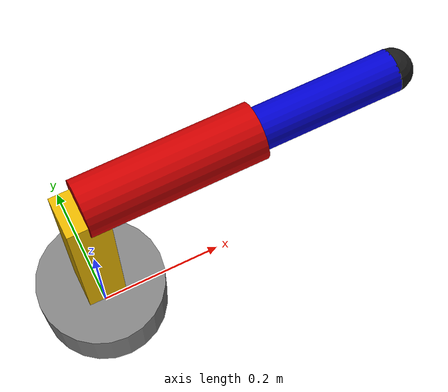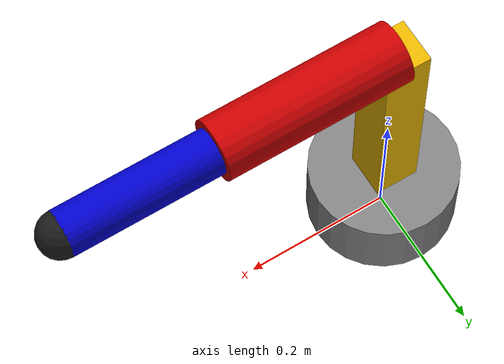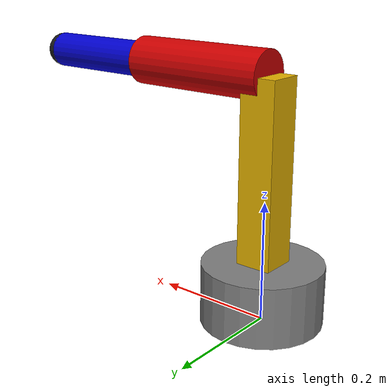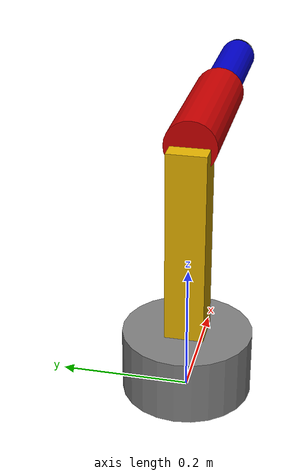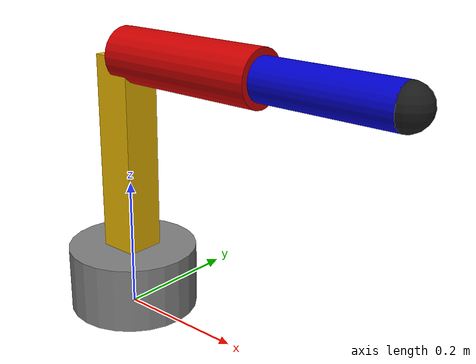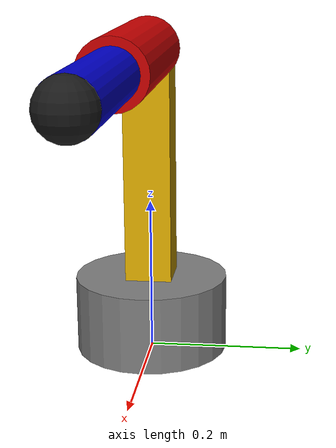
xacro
<?xml version="1.0"?>
<robot name="robot_manipulator" xmlns:xacro="http://www.ros.org/wiki/xacro">

  <!-- Material -->
  <material name="abu_abu">  <color rgba="0.5 0.5 0.5 1.0"/></material>
  <material name="kuning">   <color rgba="0.9 0.7 0.0 1.0"/></material>
  <material name="merah">    <color rgba="0.8 0.0 0.0 1.0"/></material>
  <material name="biru">     <color rgba="0.0 0.0 0.8 1.0"/></material>
  <material name="hitam">    <color rgba="0.1 0.1 0.1 1.0"/></material>

  <!-- BASE -->
  <link name="world"/>

  <joint name="joint_base_world" type="fixed">
    <parent link="world"/>
    <child link="base_link"/>
    <origin xyz="0 0 0" rpy="0 0 0"/>
  </joint>

  <link name="base_link">
    <inertial>
      <mass value="2.0"/>
      <origin xyz="0 0 0.05" rpy="0 0 0"/>
      <inertia ixx="0.01" ixy="0" ixz="0" iyy="0.01" iyz="0" izz="0.01"/>
    </inertial>
    <collision>
      <origin xyz="0 0 0.05" rpy="0 0 0"/>
      <geometry><cylinder radius="0.1" length="0.1"/></geometry>
    </collision>
    <visual>
      <origin xyz="0 0 0.05" rpy="0 0 0"/>
      <geometry><cylinder radius="0.1" length="0.1"/></geometry>
      <material name="abu_abu"/>
    </visual>
  </link>

  <!-- JOINT 1: Rotasi horizontal (yaw) -->
  <joint name="joint_1" type="revolute">
    <parent link="base_link"/>
    <child link="link_1"/>
    <origin xyz="0 0 0.1" rpy="0 0 0"/>
    <axis xyz="0 0 1"/>
    <limit lower="-3.14159" upper="3.14159" effort="100" velocity="1.0"/>
    <dynamics damping="0.5" friction="0.1"/>
  </joint>

  <link name="link_1">
    <inertial>
      <mass value="0.5"/>
      <origin xyz="0 0 0.15" rpy="0 0 0"/>
      <inertia ixx="0.003" ixy="0" ixz="0" iyy="0.003" iyz="0" izz="0.001"/>
    </inertial>
    <collision>
      <origin xyz="0 0 0.15" rpy="0 0 0"/>
      <geometry><box size="0.06 0.06 0.30"/></geometry>
    </collision>
    <visual>
      <origin xyz="0 0 0.15" rpy="0 0 0"/>
      <geometry><box size="0.06 0.06 0.30"/></geometry>
      <material name="kuning"/>
    </visual>
  </link>

  <!-- JOINT 2: Rotasi pitch bahu -->
  <joint name="joint_2" type="revolute">
    <parent link="link_1"/>
    <child link="link_2"/>
    <origin xyz="0 0 0.30" rpy="0 0 0"/>
    <axis xyz="0 1 0"/>
    <limit lower="-1.5707" upper="1.5707" effort="80" velocity="1.0"/>
    <dynamics damping="0.5" friction="0.1"/>
  </joint>

  <link name="link_2">
    <inertial>
      <mass value="0.3"/>
      <origin xyz="0.125 0 0" rpy="0 0 0"/>
      <inertia ixx="0.001" ixy="0" ixz="0" iyy="0.001" iyz="0" izz="0.001"/>
    </inertial>
    <collision>
      <origin xyz="0.125 0 0" rpy="0 1.5707 0"/>
      <geometry><cylinder radius="0.04" length="0.25"/></geometry>
    </collision>
    <visual>
      <origin xyz="0.125 0 0" rpy="0 1.5707 0"/>
      <geometry><cylinder radius="0.04" length="0.25"/></geometry>
      <material name="merah"/>
    </visual>
  </link>

  <!-- JOINT 3: Rotasi pitch siku -->
  <joint name="joint_3" type="revolute">
    <parent link="link_2"/>
    <child link="link_3"/>
    <origin xyz="0.25 0 0" rpy="0 0 0"/>
    <axis xyz="0 1 0"/>
    <limit lower="-2.0944" upper="0" effort="50" velocity="1.5"/>
    <dynamics damping="0.3" friction="0.05"/>
  </joint>

  <link name="link_3">
    <inertial>
      <mass value="0.2"/>
      <origin xyz="0.1 0 0" rpy="0 0 0"/>
      <inertia ixx="0.0005" ixy="0" ixz="0" iyy="0.0005" iyz="0" izz="0.0005"/>
    </inertial>
    <collision>
      <origin xyz="0.1 0 0" rpy="0 1.5707 0"/>
      <geometry><cylinder radius="0.03" length="0.20"/></geometry>
    </collision>
    <visual>
      <origin xyz="0.1 0 0" rpy="0 1.5707 0"/>
      <geometry><cylinder radius="0.03" length="0.20"/></geometry>
      <material name="biru"/>
    </visual>
  </link>

  <!-- End Effector -->
  <joint name="joint_end_effector" type="fixed">
    <parent link="link_3"/>
    <child link="end_effector"/>
    <origin xyz="0.20 0 0" rpy="0 0 0"/>
  </joint>

  <link name="end_effector">
    <inertial>
      <mass value="0.05"/>
      <origin xyz="0 0 0" rpy="0 0 0"/>
      <inertia ixx="0.0001" ixy="0" ixz="0" iyy="0.0001" iyz="0" izz="0.0001"/>
    </inertial>
    <collision>
      <geometry><sphere radius="0.03"/></geometry>
    </collision>
    <visual>
      <geometry><sphere radius="0.03"/></geometry>
      <material name="hitam"/>
    </visual>
  </link>

  <!-- ros2_control interface: hardware + joints -->
  <!-- Menggunakan mock_components agar tidak perlu paket gazebo_ros2_control -->
  <!-- Gerakan joint tampil di RViz2; Gazebo menampilkan model statis -->
  <ros2_control name="ManipulatorSystem" type="system">
    <hardware>
      <plugin>mock_components/GenericSystem</plugin>
    </hardware>
    <joint name="joint_1">
      <command_interface name="position">
        <param name="min">-3.14159</param>
        <param name="max"> 3.14159</param>
      </command_interface>
      <state_interface name="position"/>
      <state_interface name="velocity"/>
    </joint>
    <joint name="joint_2">
      <command_interface name="position">
        <param name="min">-1.5707</param>
        <param name="max"> 1.5707</param>
      </command_interface>
      <state_interface name="position"/>
      <state_interface name="velocity"/>
    </joint>
    <joint name="joint_3">
      <command_interface name="position">
        <param name="min">-2.0944</param>
        <param name="max"> 0.0</param>
      </command_interface>
      <state_interface name="position"/>
      <state_interface name="velocity"/>
    </joint>
  </ros2_control>

  <!-- Warna Gazebo -->
  <gazebo reference="base_link">  <material>Gazebo/Grey</material>   </gazebo>
  <gazebo reference="link_1">     <material>Gazebo/Yellow</material>  </gazebo>
  <gazebo reference="link_2">     <material>Gazebo/Red</material>     </gazebo>
  <gazebo reference="link_3">     <material>Gazebo/Blue</material>    </gazebo>
  <gazebo reference="end_effector"><material>Gazebo/Black</material>  </gazebo>

</robot>
